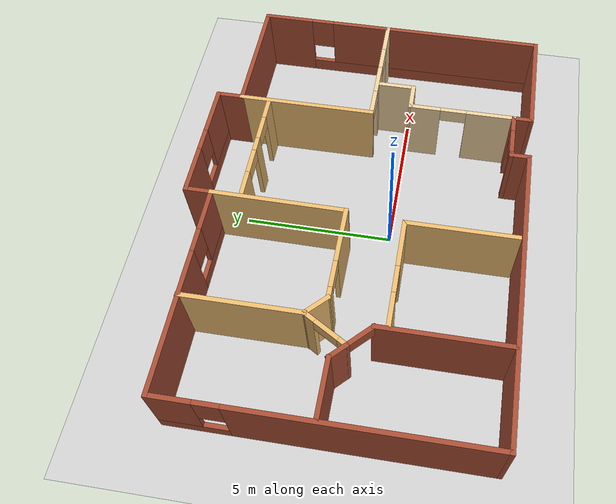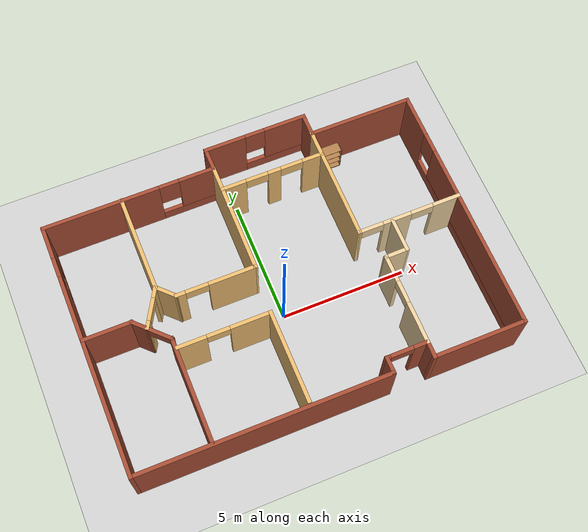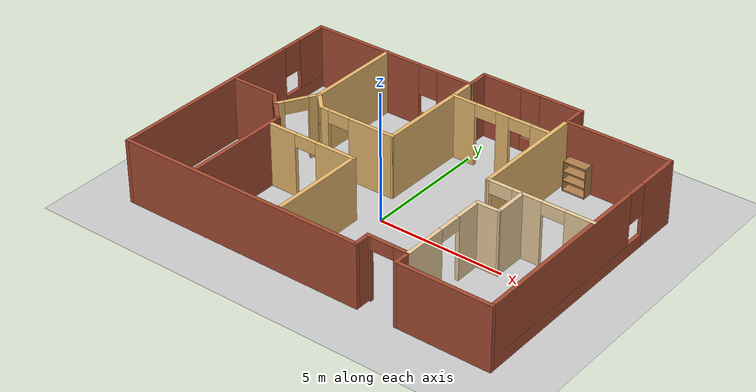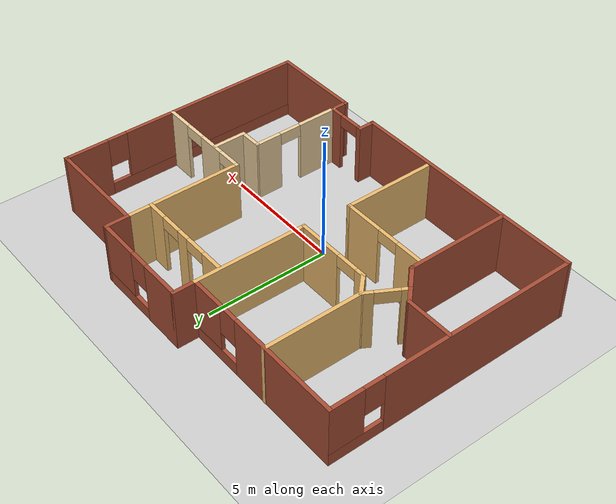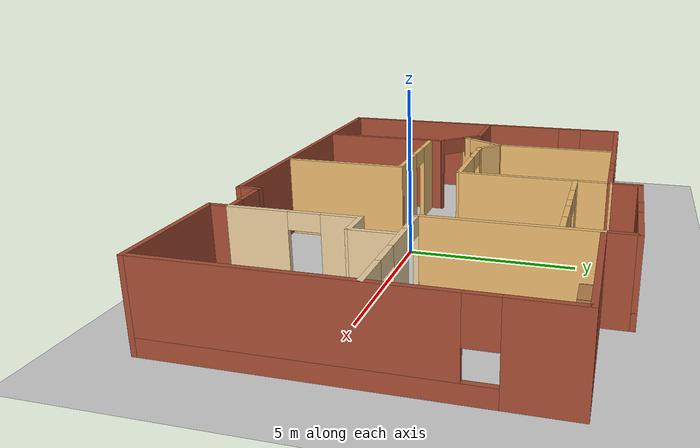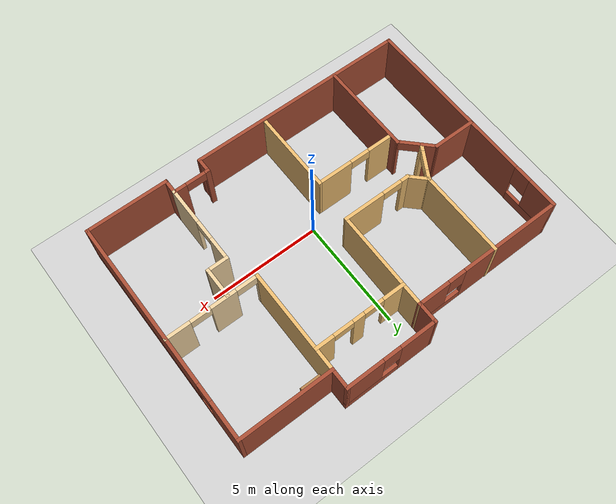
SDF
<sdf version="1.6">
 <world name="default">
  <model name="ground_plane">
   <static>1</static>
   <link name="link">
    <collision name="collision">
     <geometry><plane><normal>0 0 1</normal><size>100 100</size></plane></geometry>
     <surface>
      <contact><collide_bitmask>65535</collide_bitmask></contact>
      <friction><ode><mu>100</mu><mu2>50</mu2></ode></friction>
     </surface>
    </collision>
    <visual name="visual">
     <cast_shadows>0</cast_shadows>
     <geometry><plane><normal>0 0 1</normal><size>100 100</size></plane></geometry>
     <material>
      <script><uri>file://media/materials/scripts/gazebo.material</uri><name>Gazebo/Grey</name></script>
     </material>
    </visual>
   </link>
  </model>
  <model name="RobotHouse">
   <pose>0.10736 1.17613 0 0 -0 0</pose>
   <link name="Wall_20">
    <pose>-4.1 4.625 0 0 -0 0</pose>
    <visual name="Wall_20_Visual_0">
     <pose>-1.15251 0 1.25 0 -0 0</pose>
     <geometry><box><size>4.69498 0.15 2.5</size></box></geometry>
     <material>
      <script><uri>file://media/materials/scripts/gazebo.material</uri><name>Gazebo/Bricks</name></script>
      <ambient>1 1 1 1</ambient>
     </material>
     <meta><layer>0</layer></meta>
    </visual>
    <collision name="Wall_20_Collision_0">
     <geometry><box><size>4.69498 0.15 2.5</size></box></geometry>
     <pose>-1.15251 0 1.25 0 -0 0</pose>
    </collision>
    <visual name="Wall_20_Visual_1">
     <pose>2.34749 0 0.25 0 -0 0</pose>
     <geometry><box><size>2.30503 0.15 0.5</size></box></geometry>
     <material>
      <script><uri>file://media/materials/scripts/gazebo.material</uri><name>Gazebo/Bricks</name></script>
      <ambient>1 1 1 1</ambient>
     </material>
     <meta><layer>0</layer></meta>
    </visual>
    <collision name="Wall_20_Collision_1">
     <geometry><box><size>2.30503 0.15 0.5</size></box></geometry>
     <pose>2.34749 0 0.25 0 -0 0</pose>
    </collision>
    <visual name="Wall_20_Visual_2">
     <pose>2.74749 0 1.5 0 -0 0</pose>
     <geometry><box><size>1.50503 0.15 2</size></box></geometry>
     <material>
      <script><uri>file://media/materials/scripts/gazebo.material</uri><name>Gazebo/Bricks</name></script>
      <ambient>1 1 1 1</ambient>
     </material>
     <meta><layer>0</layer></meta>
    </visual>
    <collision name="Wall_20_Collision_2">
     <geometry><box><size>1.50503 0.15 2</size></box></geometry>
     <pose>2.74749 0 1.5 0 -0 0</pose>
    </collision>
    <visual name="Wall_20_Visual_3">
     <pose>1.59498 0 1.9 0 -0 0</pose>
     <geometry><box><size>0.8 0.15 1.2</size></box></geometry>
     <material>
      <script><uri>file://media/materials/scripts/gazebo.material</uri><name>Gazebo/Bricks</name></script>
      <ambient>1 1 1 1</ambient>
     </material>
     <meta><layer>0</layer></meta>
    </visual>
    <collision name="Wall_20_Collision_3">
     <geometry><box><size>0.8 0.15 1.2</size></box></geometry>
     <pose>1.59498 0 1.9 0 -0 0</pose>
    </collision>
   </link>
   <link name="Wall_21">
    <collision name="Wall_21_Collision">
     <geometry><box><size>1 0.15 2.5</size></box></geometry>
     <pose>0 0 1.25 0 -0 0</pose>
    </collision>
    <visual name="Wall_21_Visual">
     <pose>0 0 1.25 0 -0 0</pose>
     <geometry><box><size>1 0.15 2.5</size></box></geometry>
     <material>
      <script><uri>file://media/materials/scripts/gazebo.material</uri><name>Gazebo/Bricks</name></script>
      <ambient>0.913725 0.72549 0.431373 1</ambient>
     </material>
     <meta><layer>0</layer></meta>
    </visual>
    <pose>-0.675 5.05 0 0 -0 1.5708</pose>
   </link>
   <link name="Wall_22">
    <pose>1.375 5.475 0 0 -0 0</pose>
    <visual name="Wall_22_Visual_0">
     <pose>-1.2722 0 1.25 0 -0 0</pose>
     <geometry><box><size>1.70559 0.15 2.5</size></box></geometry>
     <material>
      <script><uri>file://media/materials/scripts/gazebo.material</uri><name>Gazebo/Bricks</name></script>
      <ambient>1 1 1 1</ambient>
     </material>
     <meta><layer>0</layer></meta>
    </visual>
    <collision name="Wall_22_Collision_0">
     <geometry><box><size>1.70559 0.15 2.5</size></box></geometry>
     <pose>-1.2722 0 1.25 0 -0 0</pose>
    </collision>
    <visual name="Wall_22_Visual_1">
     <pose>0.852797 0 0.25 0 -0 0</pose>
     <geometry><box><size>2.54441 0.15 0.5</size></box></geometry>
     <material>
      <script><uri>file://media/materials/scripts/gazebo.material</uri><name>Gazebo/Bricks</name></script>
      <ambient>1 1 1 1</ambient>
     </material>
     <meta><layer>0</layer></meta>
    </visual>
    <collision name="Wall_22_Collision_1">
     <geometry><box><size>2.54441 0.15 0.5</size></box></geometry>
     <pose>0.852797 0 0.25 0 -0 0</pose>
    </collision>
    <visual name="Wall_22_Visual_2">
     <pose>1.2528 0 1.5 0 -0 0</pose>
     <geometry><box><size>1.74441 0.15 2</size></box></geometry>
     <material>
      <script><uri>file://media/materials/scripts/gazebo.material</uri><name>Gazebo/Bricks</name></script>
      <ambient>1 1 1 1</ambient>
     </material>
     <meta><layer>0</layer></meta>
    </visual>
    <collision name="Wall_22_Collision_2">
     <geometry><box><size>1.74441 0.15 2</size></box></geometry>
     <pose>1.2528 0 1.5 0 -0 0</pose>
    </collision>
    <visual name="Wall_22_Visual_3">
     <pose>-0.019407 0 1.9 0 -0 0</pose>
     <geometry><box><size>0.8 0.15 1.2</size></box></geometry>
     <material>
      <script><uri>file://media/materials/scripts/gazebo.material</uri><name>Gazebo/Bricks</name></script>
      <ambient>1 1 1 1</ambient>
     </material>
     <meta><layer>0</layer></meta>
    </visual>
    <collision name="Wall_22_Collision_3">
     <geometry><box><size>0.8 0.15 1.2</size></box></geometry>
     <pose>-0.019407 0 1.9 0 -0 0</pose>
    </collision>
   </link>
   <link name="Wall_23">
    <collision name="Wall_23_Collision">
     <geometry><box><size>1 0.15 2.5</size></box></geometry>
     <pose>0 0 1.25 0 -0 0</pose>
    </collision>
    <visual name="Wall_23_Visual">
     <pose>0 0 1.25 0 -0 0</pose>
     <geometry><box><size>1 0.15 2.5</size></box></geometry>
     <material>
      <script><uri>file://media/materials/scripts/gazebo.material</uri><name>Gazebo/Bricks</name></script>
      <ambient>0.921569 0.807843 0.615686 1</ambient>
     </material>
     <meta><layer>0</layer></meta>
    </visual>
    <pose>3.425 5.05 0 0 -0 -1.5708</pose>
   </link>
   <link name="Wall_24">
    <collision name="Wall_24_Collision">
     <geometry><box><size>4.25 0.15 2.5</size></box></geometry>
     <pose>0 0 1.25 0 -0 0</pose>
    </collision>
    <visual name="Wall_24_Visual">
     <pose>0 0 1.25 0 -0 0</pose>
     <geometry><box><size>4.25 0.15 2.5</size></box></geometry>
     <material>
      <script><uri>file://media/materials/scripts/gazebo.material</uri><name>Gazebo/Bricks</name></script>
      <ambient>0.913725 0.72549 0.431373 1</ambient>
     </material>
     <meta><layer>0</layer></meta>
    </visual>
    <pose>5.475 4.625 0 0 -0 0</pose>
   </link>
   <link name="Wall_25">
    <pose>7.525 -0.425 0 0 -0 -1.5708</pose>
    <visual name="Wall_25_Visual_0">
     <pose>-4.22927 0 1.25 0 -0 0</pose>
     <geometry><box><size>1.79147 0.15 2.5</size></box></geometry>
     <material>
      <script><uri>file://media/materials/scripts/gazebo.material</uri><name>Gazebo/Bricks</name></script>
      <ambient>1 1 1 1</ambient>
     </material>
     <meta><layer>0</layer></meta>
    </visual>
    <collision name="Wall_25_Collision_0">
     <geometry><box><size>1.79147 0.15 2.5</size></box></geometry>
     <pose>-4.22927 0 1.25 0 -0 0</pose>
    </collision>
    <visual name="Wall_25_Visual_1">
     <pose>0.895734 0 0.25 0 -0 0</pose>
     <geometry><box><size>8.45853 0.15 0.5</size></box></geometry>
     <material>
      <script><uri>file://media/materials/scripts/gazebo.material</uri><name>Gazebo/Bricks</name></script>
      <ambient>1 1 1 1</ambient>
     </material>
     <meta><layer>0</layer></meta>
    </visual>
    <collision name="Wall_25_Collision_1">
     <geometry><box><size>8.45853 0.15 0.5</size></box></geometry>
     <pose>0.895734 0 0.25 0 -0 0</pose>
    </collision>
    <visual name="Wall_25_Visual_2">
     <pose>1.29573 0 1.5 0 -0 0</pose>
     <geometry><box><size>7.65853 0.15 2</size></box></geometry>
     <material>
      <script><uri>file://media/materials/scripts/gazebo.material</uri><name>Gazebo/Bricks</name></script>
      <ambient>1 1 1 1</ambient>
     </material>
     <meta><layer>0</layer></meta>
    </visual>
    <collision name="Wall_25_Collision_2">
     <geometry><box><size>7.65853 0.15 2</size></box></geometry>
     <pose>1.29573 0 1.5 0 -0 0</pose>
    </collision>
    <visual name="Wall_25_Visual_3">
     <pose>-2.93353 0 1.9 0 -0 0</pose>
     <geometry><box><size>0.8 0.15 1.2</size></box></geometry>
     <material>
      <script><uri>file://media/materials/scripts/gazebo.material</uri><name>Gazebo/Bricks</name></script>
      <ambient>1 1 1 1</ambient>
     </material>
     <meta><layer>0</layer></meta>
    </visual>
    <collision name="Wall_25_Collision_3">
     <geometry><box><size>0.8 0.15 1.2</size></box></geometry>
     <pose>-2.93353 0 1.9 0 -0 0</pose>
    </collision>
   </link>
   <link name="Wall_26">
    <collision name="Wall_26_Collision">
     <geometry><box><size>3.75 0.15 2.5</size></box></geometry>
     <pose>0 0 1.25 0 -0 0</pose>
    </collision>
    <visual name="Wall_26_Visual">
     <pose>0 0 1.25 0 -0 0</pose>
     <geometry><box><size>3.75 0.15 2.5</size></box></geometry>
     <material>
      <script><uri>file://media/materials/scripts/gazebo.material</uri><name>Gazebo/Bricks</name></script>
      <ambient>1 1 1 1</ambient>
     </material>
     <meta><layer>0</layer></meta>
    </visual>
    <pose>5.725 -5.475 0 0 -0 3.14159</pose>
   </link>
   <link name="Wall_27">
    <collision name="Wall_27_Collision">
     <geometry><box><size>0.75 0.15 2.5</size></box></geometry>
     <pose>0 0 1.25 0 -0 0</pose>
    </collision>
    <visual name="Wall_27_Visual">
     <pose>0 0 1.25 0 -0 0</pose>
     <geometry><box><size>0.75 0.15 2.5</size></box></geometry>
     <material>
      <script><uri>file://media/materials/scripts/gazebo.material</uri><name>Gazebo/Bricks</name></script>
      <ambient>1 1 1 1</ambient>
     </material>
     <meta><layer>0</layer></meta>
    </visual>
    <pose>3.925 -5.175 0 0 -0 1.5708</pose>
   </link>
   <link name="Wall_28">
    <pose>3.125 -4.875 0 0 -0 3.14159</pose>
    <visual name="Wall_28_Visual_0">
     <pose>-0.56282 0 1.25 0 -0 0</pose>
     <geometry><box><size>0.62436 0.15 2.5</size></box></geometry>
     <material>
      <script><uri>file://media/materials/scripts/gazebo.material</uri><name>Gazebo/Bricks</name></script>
      <ambient>1 1 1 1</ambient>
     </material>
     <meta><layer>0</layer></meta>
    </visual>
    <collision name="Wall_28_Collision_0">
     <geometry><box><size>0.62436 0.15 2.5</size></box></geometry>
     <pose>-0.56282 0 1.25 0 -0 0</pose>
    </collision>
    <visual name="Wall_28_Visual_1">
     <pose>0.76218 0 1.25 0 -0 0</pose>
     <geometry><box><size>0.22564 0.15 2.5</size></box></geometry>
     <material>
      <script><uri>file://media/materials/scripts/gazebo.material</uri><name>Gazebo/Bricks</name></script>
      <ambient>1 1 1 1</ambient>
     </material>
     <meta><layer>0</layer></meta>
    </visual>
    <collision name="Wall_28_Collision_1">
     <geometry><box><size>0.22564 0.15 2.5</size></box></geometry>
     <pose>0.76218 0 1.25 0 -0 0</pose>
    </collision>
    <visual name="Wall_28_Visual_2">
     <pose>0.19936 0 2.25 0 -0 0</pose>
     <geometry><box><size>0.9 0.15 0.5</size></box></geometry>
     <material>
      <script><uri>file://media/materials/scripts/gazebo.material</uri><name>Gazebo/Bricks</name></script>
      <ambient>1 1 1 1</ambient>
     </material>
     <meta><layer>0</layer></meta>
    </visual>
    <collision name="Wall_28_Collision_2">
     <geometry><box><size>0.9 0.15 0.5</size></box></geometry>
     <pose>0.19936 0 2.25 0 -0 0</pose>
    </collision>
   </link>
   <link name="Wall_29">
    <collision name="Wall_29_Collision">
     <geometry><box><size>0.75 0.15 2.5</size></box></geometry>
     <pose>0 0 1.25 0 -0 0</pose>
    </collision>
    <visual name="Wall_29_Visual">
     <pose>0 0 1.25 0 -0 0</pose>
     <geometry><box><size>0.75 0.15 2.5</size></box></geometry>
     <material>
      <script><uri>file://media/materials/scripts/gazebo.material</uri><name>Gazebo/Bricks</name></script>
      <ambient>1 1 1 1</ambient>
     </material>
     <meta><layer>0</layer></meta>
    </visual>
    <pose>2.325 -5.175 0 0 -0 -1.5708</pose>
   </link>
   <link name="Wall_30">
    <collision name="Wall_30_Collision">
     <geometry><box><size>10 0.15 2.5</size></box></geometry>
     <pose>0 0 1.25 0 -0 0</pose>
    </collision>
    <visual name="Wall_30_Visual">
     <pose>0 0 1.25 0 -0 0</pose>
     <geometry><box><size>10 0.15 2.5</size></box></geometry>
     <material>
      <script><uri>file://media/materials/scripts/gazebo.material</uri><name>Gazebo/Bricks</name></script>
      <ambient>1 1 1 1</ambient>
     </material>
     <meta><layer>0</layer></meta>
    </visual>
    <pose>-2.6 -5.475 0 0 -0 3.14159</pose>
   </link>
   <link name="Wall_31">
    <pose>-7.525 -0.425 0 0 -0 1.5708</pose>
    <visual name="Wall_31_Visual_0">
     <pose>-1.0946 0 1.25 0 -0 0</pose>
     <geometry><box><size>8.0608 0.15 2.5</size></box></geometry>
     <material>
      <script><uri>file://media/materials/scripts/gazebo.material</uri><name>Gazebo/Bricks</name></script>
      <ambient>1 1 1 1</ambient>
     </material>
     <meta><layer>0</layer></meta>
    </visual>
    <collision name="Wall_31_Collision_0">
     <geometry><box><size>8.0608 0.15 2.5</size></box></geometry>
     <pose>-1.0946 0 1.25 0 -0 0</pose>
    </collision>
    <visual name="Wall_31_Visual_1">
     <pose>4.0304 0 0.25 0 -0 0</pose>
     <geometry><box><size>2.1892 0.15 0.5</size></box></geometry>
     <material>
      <script><uri>file://media/materials/scripts/gazebo.material</uri><name>Gazebo/Bricks</name></script>
      <ambient>1 1 1 1</ambient>
     </material>
     <meta><layer>0</layer></meta>
    </visual>
    <collision name="Wall_31_Collision_1">
     <geometry><box><size>2.1892 0.15 0.5</size></box></geometry>
     <pose>4.0304 0 0.25 0 -0 0</pose>
    </collision>
    <visual name="Wall_31_Visual_2">
     <pose>4.4304 0 1.5 0 -0 0</pose>
     <geometry><box><size>1.3892 0.15 2</size></box></geometry>
     <material>
      <script><uri>file://media/materials/scripts/gazebo.material</uri><name>Gazebo/Bricks</name></script>
      <ambient>1 1 1 1</ambient>
     </material>
     <meta><layer>0</layer></meta>
    </visual>
    <collision name="Wall_31_Collision_2">
     <geometry><box><size>1.3892 0.15 2</size></box></geometry>
     <pose>4.4304 0 1.5 0 -0 0</pose>
    </collision>
    <visual name="Wall_31_Visual_3">
     <pose>3.3358 0 1.9 0 -0 0</pose>
     <geometry><box><size>0.8 0.15 1.2</size></box></geometry>
     <material>
      <script><uri>file://media/materials/scripts/gazebo.material</uri><name>Gazebo/Bricks</name></script>
      <ambient>1 1 1 1</ambient>
     </material>
     <meta><layer>0</layer></meta>
    </visual>
    <collision name="Wall_31_Collision_3">
     <geometry><box><size>0.8 0.15 1.2</size></box></geometry>
     <pose>3.3358 0 1.9 0 -0 0</pose>
    </collision>
   </link>
   <link name="Wall_33">
    <collision name="Wall_33_Collision">
     <geometry><box><size>2 0.15 2.5</size></box></geometry>
     <pose>0 0 1.25 0 -0 0</pose>
    </collision>
    <visual name="Wall_33_Visual">
     <pose>0 0 1.25 0 -0 0</pose>
     <geometry><box><size>2 0.15 2.5</size></box></geometry>
     <material>
      <script><uri>file://media/materials/scripts/gazebo.material</uri><name>Gazebo/Bricks</name></script>
      <ambient>0.921569 0.807843 0.615686 1</ambient>
     </material>
     <meta><layer>0</layer></meta>
    </visual>
    <pose>-6.57641 -0.166944 0 0 -0 0</pose>
   </link>
   <link name="Wall_34">
    <pose>-5.08572 -0.732629 0 0 -0 -0.785398</pose>
    <visual name="Wall_34_Visual_0">
     <pose>-0.497781 0 1.25 0 -0 0</pose>
     <geometry><box><size>0.754439 0.15 2.5</size></box></geometry>
     <material>
      <script><uri>file://media/materials/scripts/gazebo.material</uri><name>Gazebo/Bricks</name></script>
      <ambient>1 1 1 1</ambient>
     </material>
     <meta><layer>0</layer></meta>
    </visual>
    <collision name="Wall_34_Collision_0">
     <geometry><box><size>0.754439 0.15 2.5</size></box></geometry>
     <pose>-0.497781 0 1.25 0 -0 0</pose>
    </collision>
    <visual name="Wall_34_Visual_1">
     <pose>0.827219 0 1.25 0 -0 0</pose>
     <geometry><box><size>0.095561 0.15 2.5</size></box></geometry>
     <material>
      <script><uri>file://media/materials/scripts/gazebo.material</uri><name>Gazebo/Bricks</name></script>
      <ambient>1 1 1 1</ambient>
     </material>
     <meta><layer>0</layer></meta>
    </visual>
    <collision name="Wall_34_Collision_1">
     <geometry><box><size>0.095561 0.15 2.5</size></box></geometry>
     <pose>0.827219 0 1.25 0 -0 0</pose>
    </collision>
    <visual name="Wall_34_Visual_2">
     <pose>0.329439 0 2.25 0 -0 0</pose>
     <geometry><box><size>0.9 0.15 0.5</size></box></geometry>
     <material>
      <script><uri>file://media/materials/scripts/gazebo.material</uri><name>Gazebo/Bricks</name></script>
      <ambient>1 1 1 1</ambient>
     </material>
     <meta><layer>0</layer></meta>
    </visual>
    <collision name="Wall_34_Collision_2">
     <geometry><box><size>0.9 0.15 0.5</size></box></geometry>
     <pose>0.329439 0 2.25 0 -0 0</pose>
    </collision>
   </link>
   <link name="Wall_35">
    <collision name="Wall_35_Collision">
     <geometry><box><size>4.25 0.15 2.5</size></box></geometry>
     <pose>0 0 1.25 0 -0 0</pose>
    </collision>
    <visual name="Wall_35_Visual">
     <pose>0 0 1.25 0 -0 0</pose>
     <geometry><box><size>4.25 0.15 2.5</size></box></geometry>
     <material>
      <script><uri>file://media/materials/scripts/gazebo.material</uri><name>Gazebo/Bricks</name></script>
      <ambient>1 1 1 1</ambient>
     </material>
     <meta><layer>0</layer></meta>
    </visual>
    <pose>-4.52004 -3.34831 0 0 -0 -1.5708</pose>
   </link>
   <link name="Wall_38">
    <collision name="Wall_38_Collision">
     <geometry><box><size>4 0.15 2.5</size></box></geometry>
     <pose>0 0 1.25 0 -0 0</pose>
    </collision>
    <visual name="Wall_38_Visual">
     <pose>0 0 1.25 0 -0 0</pose>
     <geometry><box><size>4 0.15 2.5</size></box></geometry>
     <material>
      <script><uri>file://media/materials/scripts/gazebo.material</uri><name>Gazebo/Grey</name></script>
      <ambient>0.913725 0.72549 0.431373 1</ambient>
     </material>
     <meta><layer>0</layer></meta>
    </visual>
    <pose>-4.40567 2.71782 0 0 -0 -1.5708</pose>
   </link>
   <link name="Wall_39">
    <pose>-4.80567 0.100003 0 0 -0 -2.0944</pose>
    <visual name="Wall_39_Visual_0">
     <pose>-0.632046 0 1.25 0 -0 0</pose>
     <geometry><box><size>0.485909 0.15 2.5</size></box></geometry>
     <material>
      <script><uri>file://media/materials/scripts/gazebo.material</uri><name>Gazebo/Grey</name></script>
      <ambient>0.913725 0.72549 0.431373 1</ambient>
     </material>
     <meta><layer>0</layer></meta>
    </visual>
    <collision name="Wall_39_Collision_0">
     <geometry><box><size>0.485909 0.15 2.5</size></box></geometry>
     <pose>-0.632046 0 1.25 0 -0 0</pose>
    </collision>
    <visual name="Wall_39_Visual_1">
     <pose>0.692954 0 1.25 0 -0 0</pose>
     <geometry><box><size>0.364091 0.15 2.5</size></box></geometry>
     <material>
      <script><uri>file://media/materials/scripts/gazebo.material</uri><name>Gazebo/Grey</name></script>
      <ambient>0.913725 0.72549 0.431373 1</ambient>
     </material>
     <meta><layer>0</layer></meta>
    </visual>
    <collision name="Wall_39_Collision_1">
     <geometry><box><size>0.364091 0.15 2.5</size></box></geometry>
     <pose>0.692954 0 1.25 0 -0 0</pose>
    </collision>
    <visual name="Wall_39_Visual_2">
     <pose>0.060909 0 2.25 0 -0 0</pose>
     <geometry><box><size>0.9 0.15 0.5</size></box></geometry>
     <material>
      <script><uri>file://media/materials/scripts/gazebo.material</uri><name>Gazebo/Grey</name></script>
      <ambient>0.913725 0.72549 0.431373 1</ambient>
     </material>
     <meta><layer>0</layer></meta>
    </visual>
    <collision name="Wall_39_Collision_2">
     <geometry><box><size>0.9 0.15 0.5</size></box></geometry>
     <pose>0.060909 0 2.25 0 -0 0</pose>
    </collision>
   </link>
   <link name="Wall_41">
    <collision name="Wall_41_Collision">
     <geometry><box><size>1 0.15 2.5</size></box></geometry>
     <pose>0 0 1.25 0 -0 0</pose>
    </collision>
    <visual name="Wall_41_Visual">
     <pose>0 0 1.25 0 -0 0</pose>
     <geometry><box><size>1 0.15 2.5</size></box></geometry>
     <material>
      <script><uri>file://media/materials/scripts/gazebo.material</uri><name>Gazebo/Grey</name></script>
      <ambient>0.913725 0.72549 0.431373 1</ambient>
     </material>
     <meta><layer>0</layer></meta>
    </visual>
    <pose>-4.10515 0.492303 0 0 -0 -0.785398</pose>
   </link>
   <link name="Wall_42">
    <pose>-2.25463 0.191783 0 0 -0 0</pose>
    <visual name="Wall_42_Visual_0">
     <pose>-1.41412 0 1.25 0 -0 0</pose>
     <geometry><box><size>0.421763 0.15 2.5</size></box></geometry>
     <material>
      <script><uri>file://media/materials/scripts/gazebo.material</uri><name>Gazebo/Grey</name></script>
      <ambient>0.913725 0.72549 0.431373 1</ambient>
     </material>
     <meta><layer>0</layer></meta>
    </visual>
    <collision name="Wall_42_Collision_0">
     <geometry><box><size>0.421763 0.15 2.5</size></box></geometry>
     <pose>-1.41412 0 1.25 0 -0 0</pose>
    </collision>
    <visual name="Wall_42_Visual_1">
     <pose>0.660881 0 1.25 0 -0 0</pose>
     <geometry><box><size>1.92824 0.15 2.5</size></box></geometry>
     <material>
      <script><uri>file://media/materials/scripts/gazebo.material</uri><name>Gazebo/Grey</name></script>
      <ambient>0.913725 0.72549 0.431373 1</ambient>
     </material>
     <meta><layer>0</layer></meta>
    </visual>
    <collision name="Wall_42_Collision_1">
     <geometry><box><size>1.92824 0.15 2.5</size></box></geometry>
     <pose>0.660881 0 1.25 0 -0 0</pose>
    </collision>
    <visual name="Wall_42_Visual_2">
     <pose>-0.753237 0 2.25 0 -0 0</pose>
     <geometry><box><size>0.9 0.15 0.5</size></box></geometry>
     <material>
      <script><uri>file://media/materials/scripts/gazebo.material</uri><name>Gazebo/Grey</name></script>
      <ambient>0.913725 0.72549 0.431373 1</ambient>
     </material>
     <meta><layer>0</layer></meta>
    </visual>
    <collision name="Wall_42_Collision_2">
     <geometry><box><size>0.9 0.15 0.5</size></box></geometry>
     <pose>-0.753237 0 2.25 0 -0 0</pose>
    </collision>
   </link>
   <link name="Wall_43">
    <collision name="Wall_43_Collision">
     <geometry><box><size>4.58332 0.15 2.5</size></box></geometry>
     <pose>0 0 1.25 0 -0 0</pose>
    </collision>
    <visual name="Wall_43_Visual">
     <pose>0 0 1.25 0 -0 0</pose>
     <geometry><box><size>4.58332 0.15 2.5</size></box></geometry>
     <material>
      <script><uri>file://media/materials/scripts/gazebo.material</uri><name>Gazebo/Grey</name></script>
      <ambient>0.913725 0.72549 0.431373 1</ambient>
     </material>
     <meta><layer>0</layer></meta>
    </visual>
    <pose>-0.689813 2.40839 0 0 -0 1.56411</pose>
   </link>
   <link name="Wall_45">
    <collision name="Wall_45_Collision">
     <geometry><box><size>4.75 0.15 2.5</size></box></geometry>
     <pose>0 0 1.25 0 -0 0</pose>
    </collision>
    <visual name="Wall_45_Visual">
     <pose>0 0 1.25 0 -0 0</pose>
     <geometry><box><size>4.75 0.15 2.5</size></box></geometry>
     <material>
      <script><uri>file://media/materials/scripts/gazebo.material</uri><name>Gazebo/Grey</name></script>
      <ambient>0.913725 0.72549 0.431373 1</ambient>
     </material>
     <meta><layer>0</layer></meta>
    </visual>
    <pose>3.425 2.325 0 0 -0 -1.5708</pose>
   </link>
   <link name="Wall_46">
    <pose>5.475 0.025 0 0 -0 0</pose>
    <visual name="Wall_46_Visual_0">
     <pose>-2.04928 0 1.25 0 -0 0</pose>
     <geometry><box><size>0.151432 0.15 2.5</size></box></geometry>
     <material>
      <script><uri>file://media/materials/scripts/gazebo.material</uri><name>Gazebo/Grey</name></script>
      <ambient>0.921569 0.807843 0.615686 1</ambient>
     </material>
     <meta><layer>0</layer></meta>
    </visual>
    <collision name="Wall_46_Collision_0">
     <geometry><box><size>0.151432 0.15 2.5</size></box></geometry>
     <pose>-2.04928 0 1.25 0 -0 0</pose>
    </collision>
    <visual name="Wall_46_Visual_1">
     <pose>-0.497776 0 1.25 0 -0 0</pose>
     <geometry><box><size>1.15159 0.15 2.5</size></box></geometry>
     <material>
      <script><uri>file://media/materials/scripts/gazebo.material</uri><name>Gazebo/Grey</name></script>
      <ambient>0.921569 0.807843 0.615686 1</ambient>
     </material>
     <meta><layer>0</layer></meta>
    </visual>
    <collision name="Wall_46_Collision_1">
     <geometry><box><size>1.15159 0.15 2.5</size></box></geometry>
     <pose>-0.497776 0 1.25 0 -0 0</pose>
    </collision>
    <visual name="Wall_46_Visual_2">
     <pose>1.55151 0 1.25 0 -0 0</pose>
     <geometry><box><size>1.14698 0.15 2.5</size></box></geometry>
     <material>
      <script><uri>file://media/materials/scripts/gazebo.material</uri><name>Gazebo/Grey</name></script>
      <ambient>0.921569 0.807843 0.615686 1</ambient>
     </material>
     <meta><layer>0</layer></meta>
    </visual>
    <collision name="Wall_46_Collision_2">
     <geometry><box><size>1.14698 0.15 2.5</size></box></geometry>
     <pose>1.55151 0 1.25 0 -0 0</pose>
    </collision>
    <visual name="Wall_46_Visual_3">
     <pose>-1.52357 0 2.25 0 -0 0</pose>
     <geometry><box><size>0.9 0.15 0.5</size></box></geometry>
     <material>
      <script><uri>file://media/materials/scripts/gazebo.material</uri><name>Gazebo/Grey</name></script>
      <ambient>0.921569 0.807843 0.615686 1</ambient>
     </material>
     <meta><layer>0</layer></meta>
    </visual>
    <collision name="Wall_46_Collision_3">
     <geometry><box><size>0.9 0.15 0.5</size></box></geometry>
     <pose>-1.52357 0 2.25 0 -0 0</pose>
    </collision>
    <visual name="Wall_46_Visual_4">
     <pose>0.528017 0 2.25 0 -0 0</pose>
     <geometry><box><size>0.9 0.15 0.5</size></box></geometry>
     <material>
      <script><uri>file://media/materials/scripts/gazebo.material</uri><name>Gazebo/Grey</name></script>
      <ambient>0.921569 0.807843 0.615686 1</ambient>
     </material>
     <meta><layer>0</layer></meta>
    </visual>
    <collision name="Wall_46_Collision_4">
     <geometry><box><size>0.9 0.15 0.5</size></box></geometry>
     <pose>0.528017 0 2.25 0 -0 0</pose>
    </collision>
   </link>
   <link name="Wall_48">
    <pose>1.36972 3.64589 0 0 -0 0</pose>
    <visual name="Wall_48_Visual_0">
     <pose>-1.60573 0 1.25 0 -0 0</pose>
     <geometry><box><size>1.03854 0.15 2.5</size></box></geometry>
     <material>
      <script><uri>file://media/materials/scripts/gazebo.material</uri><name>Gazebo/Grey</name></script>
      <ambient>0.913725 0.72549 0.431373 1</ambient>
     </material>
     <meta><layer>0</layer></meta>
    </visual>
    <collision name="Wall_48_Collision_0">
     <geometry><box><size>1.03854 0.15 2.5</size></box></geometry>
     <pose>-1.60573 0 1.25 0 -0 0</pose>
    </collision>
    <visual name="Wall_48_Visual_1">
     <pose>0.077576 0 1.25 0 -0 0</pose>
     <geometry><box><size>0.528064 0.15 2.5</size></box></geometry>
     <material>
      <script><uri>file://media/materials/scripts/gazebo.material</uri><name>Gazebo/Grey</name></script>
      <ambient>0.913725 0.72549 0.431373 1</ambient>
     </material>
     <meta><layer>0</layer></meta>
    </visual>
    <collision name="Wall_48_Collision_1">
     <geometry><box><size>0.528064 0.15 2.5</size></box></geometry>
     <pose>0.077576 0 1.25 0 -0 0</pose>
    </collision>
    <visual name="Wall_48_Visual_2">
     <pose>1.6833 0 1.25 0 -0 0</pose>
     <geometry><box><size>0.883392 0.15 2.5</size></box></geometry>
     <material>
      <script><uri>file://media/materials/scripts/gazebo.material</uri><name>Gazebo/Grey</name></script>
      <ambient>0.913725 0.72549 0.431373 1</ambient>
     </material>
     <meta><layer>0</layer></meta>
    </visual>
    <collision name="Wall_48_Collision_2">
     <geometry><box><size>0.883392 0.15 2.5</size></box></geometry>
     <pose>1.6833 0 1.25 0 -0 0</pose>
    </collision>
    <visual name="Wall_48_Visual_3">
     <pose>-0.636456 0 2.25 0 -0 0</pose>
     <geometry><box><size>0.9 0.15 0.5</size></box></geometry>
     <material>
      <script><uri>file://media/materials/scripts/gazebo.material</uri><name>Gazebo/Grey</name></script>
      <ambient>0.913725 0.72549 0.431373 1</ambient>
     </material>
     <meta><layer>0</layer></meta>
    </visual>
    <collision name="Wall_48_Collision_3">
     <geometry><box><size>0.9 0.15 0.5</size></box></geometry>
     <pose>-0.636456 0 2.25 0 -0 0</pose>
    </collision>
    <visual name="Wall_48_Visual_4">
     <pose>0.791608 0 2.25 0 -0 0</pose>
     <geometry><box><size>0.9 0.15 0.5</size></box></geometry>
     <material>
      <script><uri>file://media/materials/scripts/gazebo.material</uri><name>Gazebo/Grey</name></script>
      <ambient>0.913725 0.72549 0.431373 1</ambient>
     </material>
     <meta><layer>0</layer></meta>
    </visual>
    <collision name="Wall_48_Collision_4">
     <geometry><box><size>0.9 0.15 0.5</size></box></geometry>
     <pose>0.791608 0 2.25 0 -0 0</pose>
    </collision>
   </link>
   <link name="Wall_50">
    <pose>-2.65814 -1.70607 0 0 -0 0</pose>
    <visual name="Wall_50_Visual_0">
     <pose>-1.27702 0 1.25 0 -0 0</pose>
     <geometry><box><size>1.19596 0.15 2.5</size></box></geometry>
     <material>
      <script><uri>file://media/materials/scripts/gazebo.material</uri><name>Gazebo/Grey</name></script>
      <ambient>0.913725 0.72549 0.431373 1</ambient>
     </material>
     <meta><layer>0</layer></meta>
    </visual>
    <collision name="Wall_50_Collision_0">
     <geometry><box><size>1.19596 0.15 2.5</size></box></geometry>
     <pose>-1.27702 0 1.25 0 -0 0</pose>
    </collision>
    <visual name="Wall_50_Visual_1">
     <pose>1.04798 0 1.25 0 -0 0</pose>
     <geometry><box><size>1.65404 0.15 2.5</size></box></geometry>
     <material>
      <script><uri>file://media/materials/scripts/gazebo.material</uri><name>Gazebo/Grey</name></script>
      <ambient>0.913725 0.72549 0.431373 1</ambient>
     </material>
     <meta><layer>0</layer></meta>
    </visual>
    <collision name="Wall_50_Collision_1">
     <geometry><box><size>1.65404 0.15 2.5</size></box></geometry>
     <pose>1.04798 0 1.25 0 -0 0</pose>
    </collision>
    <visual name="Wall_50_Visual_2">
     <pose>-0.229045 0 2.25 0 -0 0</pose>
     <geometry><box><size>0.9 0.15 0.5</size></box></geometry>
     <material>
      <script><uri>file://media/materials/scripts/gazebo.material</uri><name>Gazebo/Grey</name></script>
      <ambient>0.913725 0.72549 0.431373 1</ambient>
     </material>
     <meta><layer>0</layer></meta>
    </visual>
    <collision name="Wall_50_Collision_2">
     <geometry><box><size>0.9 0.15 0.5</size></box></geometry>
     <pose>-0.229045 0 2.25 0 -0 0</pose>
    </collision>
   </link>
   <link name="Wall_51">
    <collision name="Wall_51_Collision">
     <geometry><box><size>3.75 0.15 2.5</size></box></geometry>
     <pose>0 0 1.25 0 -0 0</pose>
    </collision>
    <visual name="Wall_51_Visual">
     <pose>0 0 1.25 0 -0 0</pose>
     <geometry><box><size>3.75 0.15 2.5</size></box></geometry>
     <material>
      <script><uri>file://media/materials/scripts/gazebo.material</uri><name>Gazebo/Grey</name></script>
      <ambient>0.913725 0.72549 0.431373 1</ambient>
     </material>
     <meta><layer>0</layer></meta>
    </visual>
    <pose>-0.858137 -3.50607 0 0 -0 -1.5708</pose>
   </link>
   <link name="Wall_53">
    <pose>3.925 -3.08157 0 0 -0 1.5708</pose>
    <visual name="Wall_53_Visual_0">
     <pose>-1.00909 0 1.25 0 -0 0</pose>
     <geometry><box><size>1.71866 0.15 2.5</size></box></geometry>
     <material>
      <script><uri>file://media/materials/scripts/gazebo.material</uri><name>Gazebo/Grey</name></script>
      <ambient>0.921569 0.807843 0.615686 1</ambient>
     </material>
     <meta><layer>0</layer></meta>
    </visual>
    <collision name="Wall_53_Collision_0">
     <geometry><box><size>1.71866 0.15 2.5</size></box></geometry>
     <pose>-1.00909 0 1.25 0 -0 0</pose>
    </collision>
    <visual name="Wall_53_Visual_1">
     <pose>1.30933 0 1.25 0 -0 0</pose>
     <geometry><box><size>1.11819 0.15 2.5</size></box></geometry>
     <material>
      <script><uri>file://media/materials/scripts/gazebo.material</uri><name>Gazebo/Grey</name></script>
      <ambient>0.921569 0.807843 0.615686 1</ambient>
     </material>
     <meta><layer>0</layer></meta>
    </visual>
    <collision name="Wall_53_Collision_1">
     <geometry><box><size>1.11819 0.15 2.5</size></box></geometry>
     <pose>1.30933 0 1.25 0 -0 0</pose>
    </collision>
    <visual name="Wall_53_Visual_2">
     <pose>0.300238 0 2.25 0 -0 0</pose>
     <geometry><box><size>0.9 0.15 0.5</size></box></geometry>
     <material>
      <script><uri>file://media/materials/scripts/gazebo.material</uri><name>Gazebo/Grey</name></script>
      <ambient>0.921569 0.807843 0.615686 1</ambient>
     </material>
     <meta><layer>0</layer></meta>
    </visual>
    <collision name="Wall_53_Collision_2">
     <geometry><box><size>0.9 0.15 0.5</size></box></geometry>
     <pose>0.300238 0 2.25 0 -0 0</pose>
    </collision>
   </link>
   <link name="Wall_54">
    <collision name="Wall_54_Collision">
     <geometry><box><size>1 0.15 2.5</size></box></geometry>
     <pose>0 0 1.25 0 -0 0</pose>
    </collision>
    <visual name="Wall_54_Visual">
     <pose>0 0 1.25 0 -0 0</pose>
     <geometry><box><size>1 0.15 2.5</size></box></geometry>
     <material>
      <script><uri>file://media/materials/scripts/gazebo.material</uri><name>Gazebo/Grey</name></script>
      <ambient>0.921569 0.807843 0.615686 1</ambient>
     </material>
     <meta><layer>0</layer></meta>
    </visual>
    <pose>4.35 -1.27829 0 0 -0 0.007735</pose>
   </link>
   <link name="Wall_59">
    <collision name="Wall_59_Collision">
     <geometry><box><size>1.4 0.15 2.5</size></box></geometry>
     <pose>0 0 1.25 0 -0 0</pose>
    </collision>
    <visual name="Wall_59_Visual">
     <pose>0 0 1.25 0 -0 0</pose>
     <geometry><box><size>1.4 0.15 2.5</size></box></geometry>
     <material>
      <script><uri>file://media/materials/scripts/gazebo.material</uri><name>Gazebo/Grey</name></script>
      <ambient>0.921569 0.807843 0.615686 1</ambient>
     </material>
     <meta><layer>0</layer></meta>
    </visual>
    <pose>4.775 -0.65 0 0 -0 1.5708</pose>
   </link>
   <static>1</static>
  </model>
  <model name="bookshelf">
   <static>1</static>
   <link name="link">
    <inertial><mass>1</mass></inertial>
    <collision name="back">
     <pose>0 0.005 0.6 0 -0 0</pose>
     <geometry><box><size>0.9 0.01 1.2</size></box></geometry>
    </collision>
    <visual name="visual1">
     <pose>0 0.005 0.6 0 -0 0</pose>
     <geometry><box><size>0.9 0.01 1.2</size></box></geometry>
     <material>
      <script><uri>file://media/materials/scripts/gazebo.material</uri><name>Gazebo/Wood</name></script>
     </material>
    </visual>
    <collision name="left_side">
     <pose>0.45 -0.195 0.6 0 -0 0</pose>
     <geometry><box><size>0.02 0.4 1.2</size></box></geometry>
    </collision>
    <visual name="visual2">
     <pose>0.45 -0.195 0.6 0 -0 0</pose>
     <geometry><box><size>0.02 0.4 1.2</size></box></geometry>
     <material>
      <script><uri>file://media/materials/scripts/gazebo.material</uri><name>Gazebo/Wood</name></script>
     </material>
    </visual>
    <collision name="right_side">
     <pose>-0.45 -0.195 0.6 0 -0 0</pose>
     <geometry><box><size>0.02 0.4 1.2</size></box></geometry>
    </collision>
    <visual name="visual3">
     <pose>-0.45 -0.195 0.6 0 -0 0</pose>
     <geometry><box><size>0.02 0.4 1.2</size></box></geometry>
     <material>
      <script><uri>file://media/materials/scripts/gazebo.material</uri><name>Gazebo/Wood</name></script>
     </material>
    </visual>
    <collision name="bottom">
     <pose>0 -0.195 0.03 0 -0 0</pose>
     <geometry><box><size>0.88 0.4 0.06</size></box></geometry>
    </collision>
    <visual name="visual4">
     <pose>0 -0.195 0.03 0 -0 0</pose>
     <geometry><box><size>0.88 0.4 0.06</size></box></geometry>
     <material>
      <script><uri>file://media/materials/scripts/gazebo.material</uri><name>Gazebo/Wood</name></script>
     </material>
    </visual>
    <collision name="top">
     <pose>0 -0.195 1.19 0 -0 0</pose>
     <geometry><box><size>0.88 0.4 0.02</size></box></geometry>
    </collision>
    <visual name="visual5">
     <pose>0 -0.195 1.19 0 -0 0</pose>
     <geometry><box><size>0.88 0.4 0.02</size></box></geometry>
     <material>
      <script><uri>file://media/materials/scripts/gazebo.material</uri><name>Gazebo/Wood</name></script>
     </material>
    </visual>
    <collision name="low_shelf">
     <pose>0 -0.195 0.43 0 -0 0</pose>
     <geometry><box><size>0.88 0.4 0.02</size></box></geometry>
    </collision>
    <visual name="visual6">
     <pose>0 -0.195 0.43 0 -0 0</pose>
     <geometry><box><size>0.88 0.4 0.02</size></box></geometry>
     <material>
      <script><uri>file://media/materials/scripts/gazebo.material</uri><name>Gazebo/Wood</name></script>
     </material>
    </visual>
    <collision name="high_shelf">
     <pose>0 -0.195 0.8 0 -0 0</pose>
     <geometry><box><size>0.88 0.4 0.02</size></box></geometry>
    </collision>
    <visual name="visual7">
     <pose>0 -0.195 0.8 0 -0 0</pose>
     <geometry><box><size>0.88 0.4 0.02</size></box></geometry>
     <material>
      <script><uri>file://media/materials/scripts/gazebo.material</uri><name>Gazebo/Wood</name></script>
     </material>
    </visual>
   </link>
   <pose>4.21583 5.71868 0 0 -0 0</pose>
  </model>
 </world>
</sdf>
